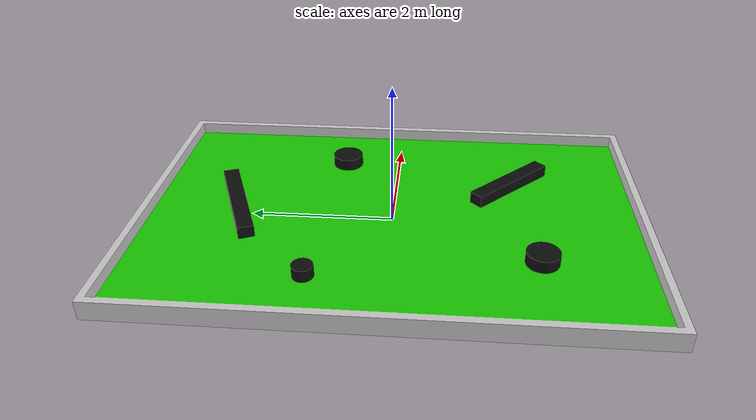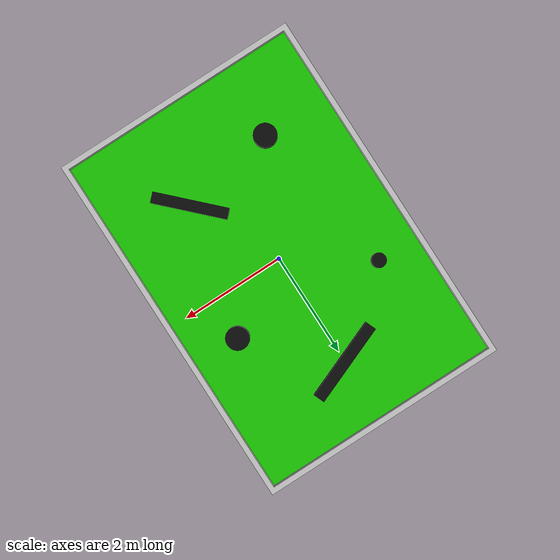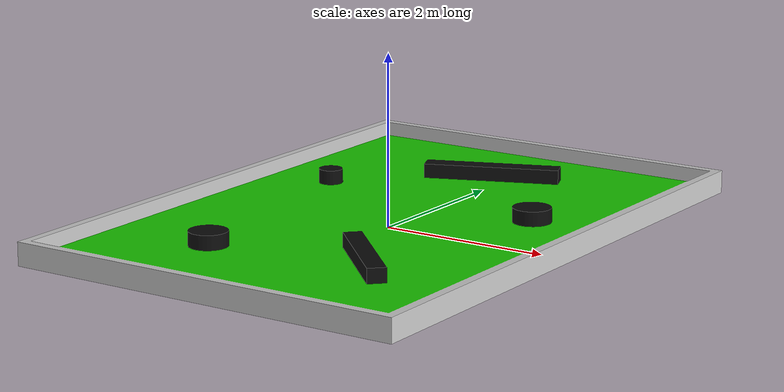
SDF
<?xml version="1.0" ?>
<sdf version="1.6">
  <model name="stage">
    <static>true</static>
    <link name="link">
      <collision name="collision">
        <geometry>
          <mesh>
            <scale>1 1 1</scale>
            <uri>model://four_ws_stage/meshes/four_ws_stage.stl</uri>
          </mesh>
        </geometry>
      </collision>
      <visual name="visual">
        <geometry>
          <mesh>
            <scale>1 1 1</scale>
            <uri>model://four_ws_stage/meshes/four_ws_stage.dae</uri>
          </mesh>
        </geometry>
      </visual>
    </link>
  </model>
</sdf>
